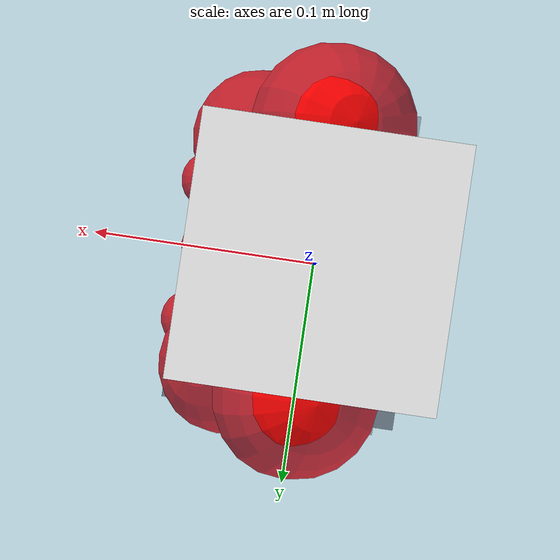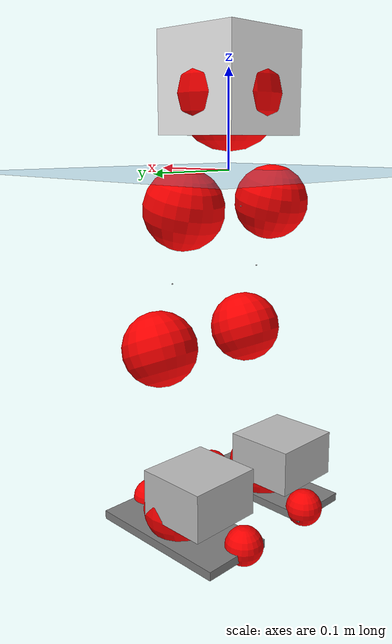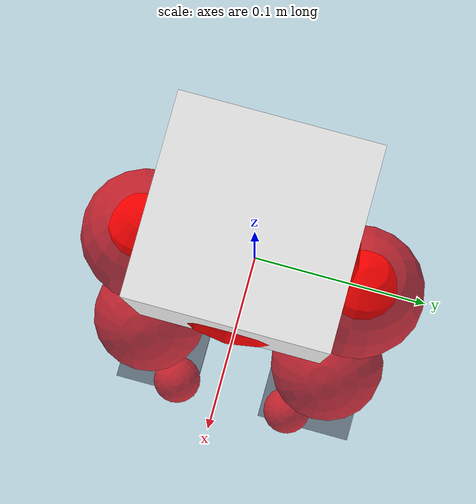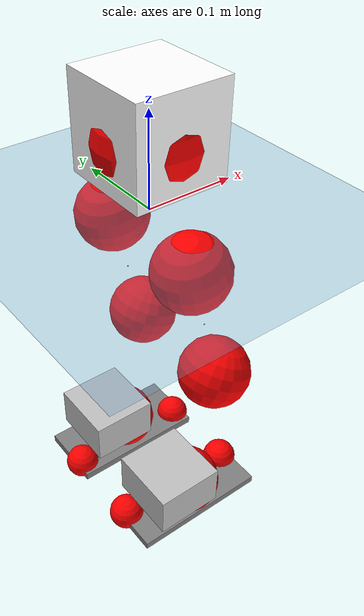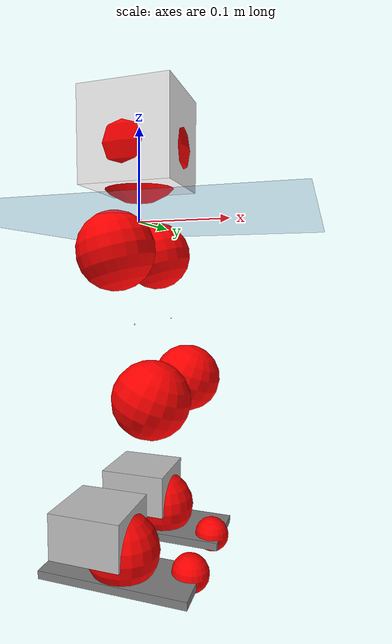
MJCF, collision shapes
<mujoco model="pi_12dof_release_v1">
  <compiler angle="radian" assetdir="assets" balanceinertia="true" inertiafromgeom="false"/>

  <option timestep="0.005" density="1.2" viscosity="2e-05"/>

  <size nkey="1"/>

  <visual>
    <quality shadowsize="8192"/>
    <map shadowclip="0.5"/>
  </visual>

  <default>
    <default class="/">
      <joint armature="0.01" damping="0.01" frictionloss="0.01"/>
      <geom contype="0" conaffinity="0" group="1" solref="-1000 -80"/>
      <site size="0.01 0.005 0.005" group="5"/>
      <general forcelimited="true" biastype="affine" gainprm="20" biasprm="0 -20 -0.5"/>
      <default class="foot">
        <geom size="0.0845 0.036 0.005" type="box" condim="6" group="4" priority="1" friction="0.9 0.2 0.2" solimp="0.015 1 0.005"/>
      </default>
      <default class="reward_collision_sphere">
        <geom group="5" rgba="1 0 0 1"/>
      </default>
    </default>
  </default>

  <asset>
    <texture type="skybox" colorspace="auto" name="//unnamed_texture_0" builtin="gradient" rgb1="0.95 0.95 0.95" rgb2="0.95 0.95 0.95" width="100" height="600"/>
    <texture type="2d" colorspace="auto" name="texplane" builtin="checker" rgb1="0.345 0.575 0.748" rgb2="0.345 0.575 0.748" markrgb="1 1 1" width="512" height="512"/>
    <material name="MatPlane" class="/" texture="texplane" texuniform="true" texrepeat="2 2" specular="0.9"/>
    <mesh name="baselink_1" class="/" file="baselink_1.STL"/>
    <mesh name="r_hip_pitch_link" class="/" file="r_hip_pitch_link.STL"/>
    <mesh name="r_hip_roll_link" class="/" file="r_hip_roll_link.STL"/>
    <mesh name="r_thigh_link" class="/" file="r_thigh_link.STL"/>
    <mesh name="r_calf_link" class="/" file="r_calf_link.STL"/>
    <mesh name="r_ankle_pitch_link" class="/" file="r_ankle_pitch_link.STL"/>
    <mesh name="r_ankle_roll_link" class="/" file="r_ankle_roll_link.STL"/>
    <mesh name="l_hip_pitch_link" class="/" file="l_hip_pitch_link.STL"/>
    <mesh name="l_hip_roll_link" class="/" file="l_hip_roll_link.STL"/>
    <mesh name="l_thigh_link" class="/" file="l_thigh_link.STL"/>
    <mesh name="l_calf_link" class="/" file="l_calf_link.STL"/>
    <mesh name="l_ankle_pitch_link" class="/" file="l_ankle_pitch_link.STL"/>
    <mesh name="l_ankle_roll_link" class="/" file="l_ankle_roll_link.STL"/>
  </asset>

  <worldbody>
    <geom name="floor" class="/" size="100 100 0.125" type="plane" group="0" material="MatPlane"/>
    <light name="toplight_shadow" class="/" pos="0 0 5" dir="0.0990148 0.0990148 -0.990148" type="directional" ambient="0.04 0.04 0.04" diffuse="0.55 0.55 0.55" specular="0.12 0.12 0.12"/>
    <light name="toplight_fill" class="/" pos="0 0 5" dir="0.0990148 0.0990148 -0.990148" type="directional" castshadow="false" ambient="0.04 0.04 0.04" diffuse="0.3 0.3 0.3" specular="0.08 0.08 0.08"/>
    <body name="trunk" pos="3.2622e-06 -0.000289196 -0.00256989" quat="0.999999 0.000972207 -0.000517055 -0.00051233">
      <inertial pos="0.00139507 0.000818957 0.044389" quat="0.699636 0.00941097 -0.000669653 0.714437" mass="2.19731" diaginertia="0.0139546 0.00399283 0.0067279"/>
      <joint name="//unnamed_joint_0" type="free"/>
      <geom name="//unnamed_geom_1" class="/" type="mesh" density="0" rgba="1 1 1 1" mesh="baselink_1"/>
      <geom name="//unnamed_geom_2" class="/" size="0.0500407 0.0500407 0.0500407" pos="0 0 0.0874032" type="box" rgba="1 1 1 1"/>
      <geom name="//unnamed_geom_3" class="reward_collision_sphere" size="0.0550448" pos="0 0 0.0764778"/>
      <site name="imu" class="/" pos="-0.00340208 0.00205411 -0.00840059" size="0.0100081"/>
      <camera name="track" class="/" pos="0 -1.68549 0" quat="0.707107 0.707107 0 0" mode="trackcom"/>
      <camera name="ego_camera" class="/" pos="0.0800366 0 0.196657" quat="-0.5 -0.5 0.5 0.5"/>
      <body name="r_hip_pitch_link" pos="0.00136879 -0.019672 -0.0344667" quat="0.992196 1.06126e-05 -0.12469 3.81935e-05">
        <inertial pos="-0.00105591 -0.0479528 -0.00230108" quat="-0.0243187 0.699123 -0.0351816 0.713721" mass="0.369285" diaginertia="0.000152262 4.20626e-05 0.000128599"/>
        <joint name="r_hip_pitch_joint" class="/" pos="0 0 0" axis="0.00206093 -0.999986 -0.00482712" stiffness="0.00354904" range="-1.76929 1.27112" armature="0.00993995" damping="0.0175411" frictionloss="0.00980209"/>
        <geom name="//unnamed_geom_4" class="/" type="mesh" density="0" rgba="0.75294 0.75294 0.75294 1" mesh="r_hip_pitch_link"/>
        <geom name="//unnamed_geom_5" class="/" size="0.000500407 0.000500407 0.000500407" type="box" rgba="0.75294 0.75294 0.75294 1"/>
        <body name="r_hip_roll_link" pos="-0.00149332 -0.0464077 0.00220528" quat="1 5.13586e-05 -7.41233e-05 1.21484e-05">
          <inertial pos="-0.000697657 0.000122897 -0.0653151" quat="0.708542 -0.0777699 -0.0856398 0.696122" mass="0.374556" diaginertia="0.000445683 0.000115122 0.000190087"/>
          <joint name="r_hip_roll_joint" class="/" pos="0 0 0" axis="-0.999981 -0.0033646 0.00519655" range="-0.115775 0.497813" armature="0.00871469" damping="0.00723561" frictionloss="0.0102939"/>
          <geom name="//unnamed_geom_6" class="/" type="mesh" density="0" rgba="0.75294 0.75294 0.75294 1" mesh="r_hip_roll_link"/>
          <geom name="//unnamed_geom_7" class="/" size="0.000500407 0.000500407 0.000500407" type="box" rgba="0.75294 0.75294 0.75294 1"/>
          <geom name="//unnamed_geom_8" class="reward_collision_sphere" size="0.0400326"/>
          <body name="r_thigh_link" pos="0.00140447 8.81547e-05 -0.0751977" quat="1 -5.19369e-05 0.000217318 -2.64285e-05">
            <inertial pos="-0.00224377 -0.00170069 -0.052026" quat="0.738537 0.674211 0.00108563 -0.00138711" mass="0.11197" diaginertia="0.000166995 4.02058e-05 9.00796e-05"/>
            <joint name="r_thigh_joint" class="/" pos="0 0 0" axis="-0.000699194 -0.00178109 -0.999998" range="-0.299099 0.632293" armature="0.00882073" damping="0.0106575" frictionloss="0.0102478"/>
            <geom name="//unnamed_geom_9" class="/" type="mesh" density="0" rgba="0.75294 0.75294 0.75294 1" mesh="r_thigh_link"/>
            <geom name="//unnamed_geom_10" class="/" size="0.000500407 0.000500407 0.000500407" type="box" rgba="0.75294 0.75294 0.75294 1"/>
            <body name="r_calf_link" pos="-0.00147501 -0.00113338 -0.0769151" quat="0.947733 -0.00106959 0.319061 -0.000734515">
              <inertial pos="0.00017417 -0.000789154 -0.0766668" quat="0.99984 -0.0137063 -0.00444219 0.010577" mass="0.853018" diaginertia="0.00490246 0.00150599 0.000274679"/>
              <joint name="r_calf_joint" class="/" pos="0 0 0" axis="0.0041426 -0.999985 -0.00360547" stiffness="0.00299063" range="-1.64523 0.649682" armature="0.0100616" damping="0.00948662" frictionloss="0.010218"/>
              <geom name="//unnamed_geom_11" class="/" type="mesh" density="0" rgba="0.75294 0.75294 0.75294 1" mesh="r_calf_link"/>
              <geom name="//unnamed_geom_12" class="/" size="0.000500407 0.000500407 0.000500407" type="box" rgba="0.75294 0.75294 0.75294 1"/>
              <geom name="//unnamed_geom_13" class="reward_collision_sphere" size="0.0400326"/>
              <body name="r_ankle_pitch_link" pos="0.00112667 0.000802759 -0.152433" quat="0.980076 -1.25626e-05 -0.198622 -4.67308e-05">
                <inertial pos="0.0053954 0.00280306 0.000789583" quat="0.000299492 0.709904 -0.0050758 0.70428" mass="0.179643" diaginertia="0.000427452 9.19795e-05 0.000185019"/>
                <joint name="r_ankle_pitch_joint" class="/" pos="0 0 0" axis="-0.000463416 -0.999998 -0.00184278" range="-1.30117 0.49745" armature="0.0104018" damping="0.0232391" frictionloss="0.00982549"/>
                <geom name="//unnamed_geom_14" class="/" type="mesh" density="0" rgba="0.75294 0.75294 0.75294 1" mesh="r_ankle_pitch_link"/>
                <geom name="//unnamed_geom_15" class="/" size="0.0390317 0.0400326 0.0250203" type="box" rgba="0.75294 0.75294 0.75294 1"/>
                <body name="r_ankle_roll_link" pos="0.0794319 0.000957549 0.000712517" quat="1 0.000344663 0.000331333 -5.94177e-05">
                  <inertial pos="-0.0240245 -0.00220739 -0.0142753" quat="0.560879 0.439142 0.436615 0.549488" mass="0.506837" diaginertia="0.00150903 0.000437009 0.000423803"/>
                  <joint name="r_ankle_roll_joint" class="/" pos="0 0 0" axis="-0.999992 0.00359565 0.00159702" range="-0.202503 0.161105" armature="0.00890521" damping="0.0071437" frictionloss="0.00878134"/>
                  <geom name="//unnamed_geom_16" class="/" type="mesh" density="0" rgba="0.75294 0.75294 0.75294 1" mesh="r_ankle_roll_link"/>
                  <geom name="//unnamed_geom_17" class="/" type="mesh" rgba="0.75294 0.75294 0.75294 1" mesh="r_ankle_roll_link"/>
                  <geom name="right_foot" class="foot" size="0.080809 0.0341843 0.00443391" pos="-0.0544249 0 -0.0480718"/>
                  <geom name="//unnamed_geom_19" class="reward_collision_sphere" size="0.0400326" pos="-0.0533577 0 -0.0218508"/>
                  <geom name="//unnamed_geom_20" class="reward_collision_sphere" size="0.0200163" pos="0.0160073 0.0168549 -0.0437016"/>
                  <geom name="//unnamed_geom_21" class="reward_collision_sphere" size="0.0200163" pos="-0.128059 0.0168549 -0.0437016"/>
                  <site name="right_foot" class="foot" pos="-0.0544249 0 -0.0480718" size="0.0100081"/>
                </body>
              </body>
            </body>
          </body>
        </body>
      </body>
      <body name="l_hip_pitch_link" pos="0.000652323 0.0186052 -0.0343493" quat="0.99218 9.28156e-05 -0.124813 -0.000406653">
        <inertial pos="0.00164039 0.0428952 -0.00260497" quat="-0.035939 0.704911 0.0321354 0.707655" mass="0.387758" diaginertia="0.000177324 4.40636e-05 0.000152879"/>
        <joint name="l_hip_pitch_joint" class="/" pos="0 0 0" axis="0.0117666 0.999931 0.000225507" range="-1.29779 1.75401" armature="0.0100598" damping="0" frictionloss="0.0100309"/>
        <geom name="//unnamed_geom_22" class="/" type="mesh" density="0" rgba="0.75294 0.75294 0.75294 1" mesh="l_hip_pitch_link"/>
        <geom name="//unnamed_geom_23" class="/" size="0.000500407 0.000500407 0.000500407" type="box" rgba="0.75294 0.75294 0.75294 1"/>
        <body name="l_hip_roll_link" pos="-0.00106962 0.0448863 0.00218804" quat="1 0.000530348 -0.000135131 0.000395336">
          <inertial pos="0.00102976 -0.00155377 -0.0694046" quat="0.699171 -0.0749112 -0.0781299 0.706713" mass="0.399508" diaginertia="0.000490666 0.000121525 0.000209412"/>
          <joint name="l_hip_roll_joint" class="/" pos="0 0 0" axis="-0.999993 0.000187565 -0.00363233" range="-0.502322 0.10768" armature="0.00937297" damping="0.00931637" frictionloss="0.00996982"/>
          <geom name="//unnamed_geom_24" class="/" type="mesh" density="0" rgba="0.75294 0.75294 0.75294 1" mesh="l_hip_roll_link"/>
          <geom name="//unnamed_geom_25" class="/" size="0.000500407 0.000500407 0.000500407" type="box" rgba="0.75294 0.75294 0.75294 1"/>
          <geom name="//unnamed_geom_26" class="reward_collision_sphere" size="0.0400326"/>
          <body name="l_thigh_link" pos="-0.00109986 -0.000280988 -0.0773945" quat="1 0.000117949 0.000286779 -0.000764803">
            <inertial pos="-0.00202908 -0.000903638 -0.0547002" quat="0.672397 0.74011 0.0103134 -0.00368639" mass="0.111937" diaginertia="0.000170708 3.96296e-05 8.8083e-05"/>
            <joint name="l_thigh_joint" class="/" pos="0 0 0" axis="0.00138363 0.000336937 -0.999999" range="-0.61069 0.305692" armature="0.010362" damping="0.0100389" frictionloss="0.0113084"/>
            <geom name="//unnamed_geom_27" class="/" type="mesh" density="0" rgba="0.75294 0.75294 0.75294 1" mesh="l_thigh_link"/>
            <geom name="//unnamed_geom_28" class="/" size="0.000500407 0.000500407 0.000500407" type="box" rgba="0.75294 0.75294 0.75294 1"/>
            <body name="l_calf_link" pos="0.00199083 0.000191135 -0.0748454" quat="0.947598 -7.31219e-05 0.319464 0.000132407">
              <inertial pos="-0.00125635 0.00190805 -0.0776347" quat="0.999951 -0.00565249 -0.00779348 0.00241354" mass="0.814504" diaginertia="0.00518584 0.00153708 0.000280651"/>
              <joint name="l_calf_joint" class="/" pos="0 0 0" axis="-0.00204305 0.999996 0.00181571" range="-0.693126 1.70068" armature="0.00955511" damping="0.00203698" frictionloss="0.0104256"/>
              <geom name="//unnamed_geom_29" class="/" type="mesh" density="0" rgba="0.75294 0.75294 0.75294 1" mesh="l_calf_link"/>
              <geom name="//unnamed_geom_30" class="/" size="0.000500407 0.000500407 0.000500407" type="box" rgba="0.75294 0.75294 0.75294 1"/>
              <geom name="//unnamed_geom_31" class="reward_collision_sphere" size="0.0400326"/>
              <body name="l_ankle_pitch_link" pos="0.00235872 -0.000197211 -0.152513" quat="0.980064 1.14848e-06 -0.19868 -0.000152397">
                <inertial pos="0.00494385 -0.0012605 -0.00251399" quat="-0.00670109 0.707529 0.00338433 0.706645" mass="0.17283" diaginertia="0.000442725 9.58675e-05 0.00018669"/>
                <joint name="l_ankle_pitch_joint" class="/" pos="0 0 0" axis="-0.00161171 0.999999 7.40939e-05" stiffness="0.00508568" range="-0.5263 1.31494" armature="0.010284" damping="0" frictionloss="0.00913905"/>
                <geom name="//unnamed_geom_32" class="/" type="mesh" density="0" rgba="0.75294 0.75294 0.75294 1" mesh="l_ankle_pitch_link"/>
                <geom name="//unnamed_geom_33" class="/" size="0.0390317 0.0400326 0.0250203" type="box" rgba="0.75294 0.75294 0.75294 1"/>
                <body name="l_ankle_roll_link" pos="0.0781382 0.0021556 -0.00227362" quat="0.999999 -0.00098196 -0.000441426 -0.000736964">
                  <inertial pos="-0.0265303 -0.000429709 -0.0159365" quat="0.568209 0.423747 0.435941 0.554556" mass="0.528258" diaginertia="0.00158546 0.000441736 0.000430525"/>
                  <joint name="l_ankle_roll_joint" class="/" pos="0 0 0" axis="-1 -0.000103826 -0.000342326" stiffness="0.00291811" range="-0.157034 0.100367" armature="0.0100644" damping="0" frictionloss="0.0101081"/>
                  <geom name="//unnamed_geom_34" class="/" type="mesh" density="0" rgba="0.75294 0.75294 0.75294 1" mesh="l_ankle_roll_link"/>
                  <geom name="//unnamed_geom_35" class="/" type="mesh" rgba="0.75294 0.75294 0.75294 1" mesh="l_ankle_roll_link"/>
                  <geom name="left_foot" class="foot" size="0.0816407 0.0396485 0.00465919" pos="-0.0544249 0 -0.0480718"/>
                  <geom name="//unnamed_geom_37" class="reward_collision_sphere" size="0.0400326" pos="-0.0533577 0 -0.0218508"/>
                  <geom name="//unnamed_geom_38" class="reward_collision_sphere" size="0.0200163" pos="0.0160073 -0.0168549 -0.0437016"/>
                  <geom name="//unnamed_geom_39" class="reward_collision_sphere" size="0.0200163" pos="-0.128059 -0.0168549 -0.0437016"/>
                  <site name="left_foot" class="foot" pos="-0.0544249 0 -0.0480718" size="0.0100081"/>
                </body>
              </body>
            </body>
          </body>
        </body>
      </body>
    </body>
  </worldbody>

  <contact>
    <pair class="/" geom1="floor" geom2="right_foot" name="//unnamed_contact_1"/>
    <pair class="/" geom1="floor" geom2="left_foot" name="//unnamed_contact_0"/>
  </contact>

  <actuator>
    <general name="r_hip_pitch_joint" class="/" joint="r_hip_pitch_joint" forcerange="-22.7443 22.7443" gainprm="18.7794" biasprm="0 -18.7794 -0.474704"/>
    <general name="r_hip_roll_joint" class="/" joint="r_hip_roll_joint" forcerange="-18.9816 18.9816" gainprm="18.7794" biasprm="0 -18.7794 -0.474704"/>
    <general name="r_thigh_joint" class="/" joint="r_thigh_joint" forcerange="-21.2918 21.2918" gainprm="18.7794" biasprm="0 -18.7794 -0.474704"/>
    <general name="r_calf_joint" class="/" joint="r_calf_joint" forcerange="-23.0496 23.0496" gainprm="18.7794" biasprm="0 -18.7794 -0.474704"/>
    <general name="r_ankle_pitch_joint" class="/" joint="r_ankle_pitch_joint" forcerange="-21.3902 21.3902" gainprm="18.7794" biasprm="0 -18.7794 -0.474704"/>
    <general name="r_ankle_roll_joint" class="/" joint="r_ankle_roll_joint" forcerange="-18.9458 18.9458" gainprm="18.7794" biasprm="0 -18.7794 -0.474704"/>
    <general name="l_hip_pitch_joint" class="/" joint="l_hip_pitch_joint" forcerange="-21.2457 21.2457" gainprm="18.7794" biasprm="0 -18.7794 -0.474704"/>
    <general name="l_hip_roll_joint" class="/" joint="l_hip_roll_joint" forcerange="-20.5654 20.5654" gainprm="18.7794" biasprm="0 -18.7794 -0.474704"/>
    <general name="l_thigh_joint" class="/" joint="l_thigh_joint" forcerange="-21.2458 21.2458" gainprm="18.7794" biasprm="0 -18.7794 -0.474704"/>
    <general name="l_calf_joint" class="/" joint="l_calf_joint" forcerange="-21.3125 21.3125" gainprm="18.7794" biasprm="0 -18.7794 -0.474704"/>
    <general name="l_ankle_pitch_joint" class="/" joint="l_ankle_pitch_joint" forcerange="-21.0859 21.0859" gainprm="18.7794" biasprm="0 -18.7794 -0.474704"/>
    <general name="l_ankle_roll_joint" class="/" joint="l_ankle_roll_joint" forcerange="-21.2618 21.2618" gainprm="18.7794" biasprm="0 -18.7794 -0.474704"/>
  </actuator>

  <sensor>
    <gyro site="imu" name="imu_angular_velocity"/>
    <velocimeter site="imu" name="imu_linear_velocity"/>
    <framelinvel objtype="site" objname="left_foot" name="left_foot_global_linear_velocity"/>
    <framelinvel objtype="site" objname="right_foot" name="right_foot_global_linear_velocity"/>
  </sensor>

  <keyframe>
    <key name="home" qpos="0 0 0.291 1 0 0 0 0.4 0 0 -0.8 0.4 0 -0.4 0 0 0.8 -0.4 0"/>
  </keyframe>
</mujoco>
